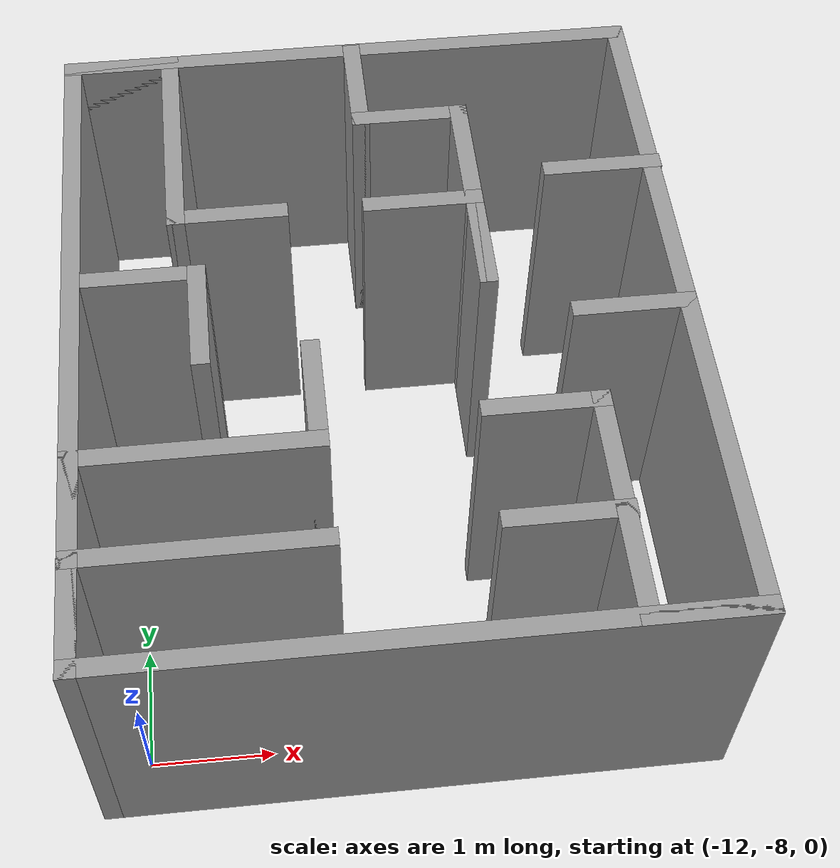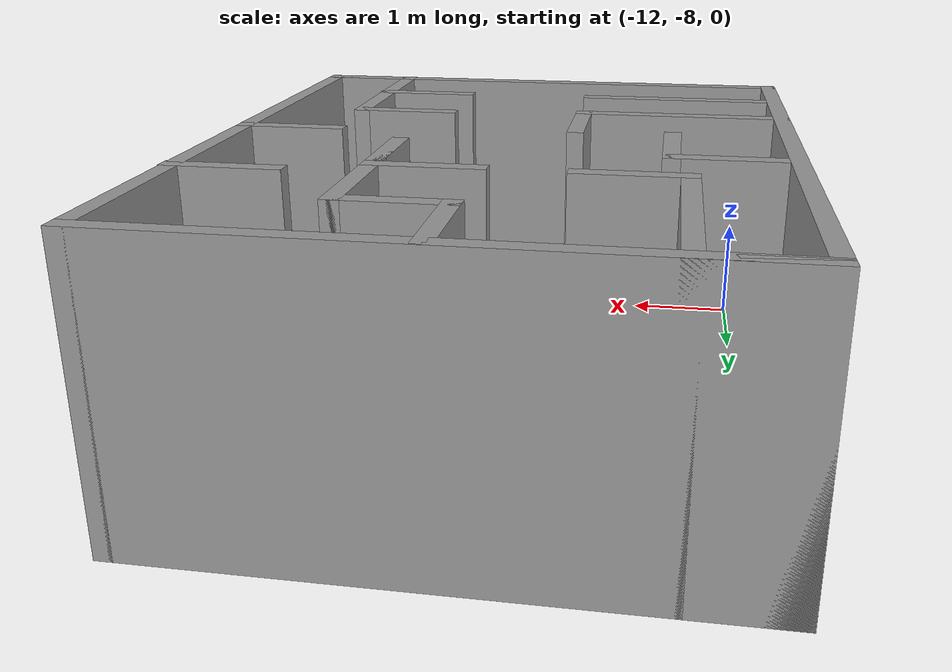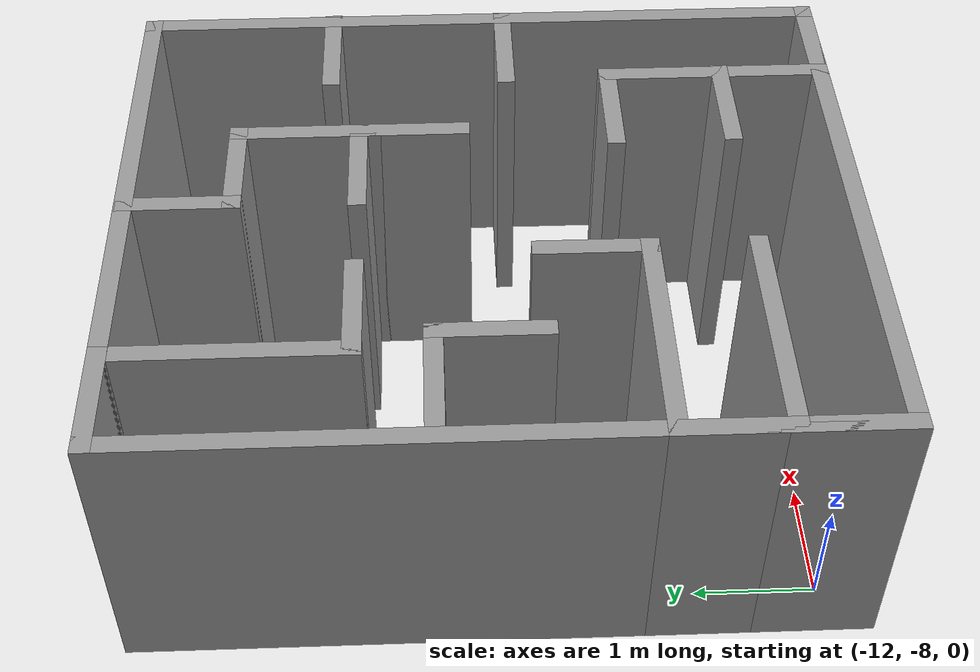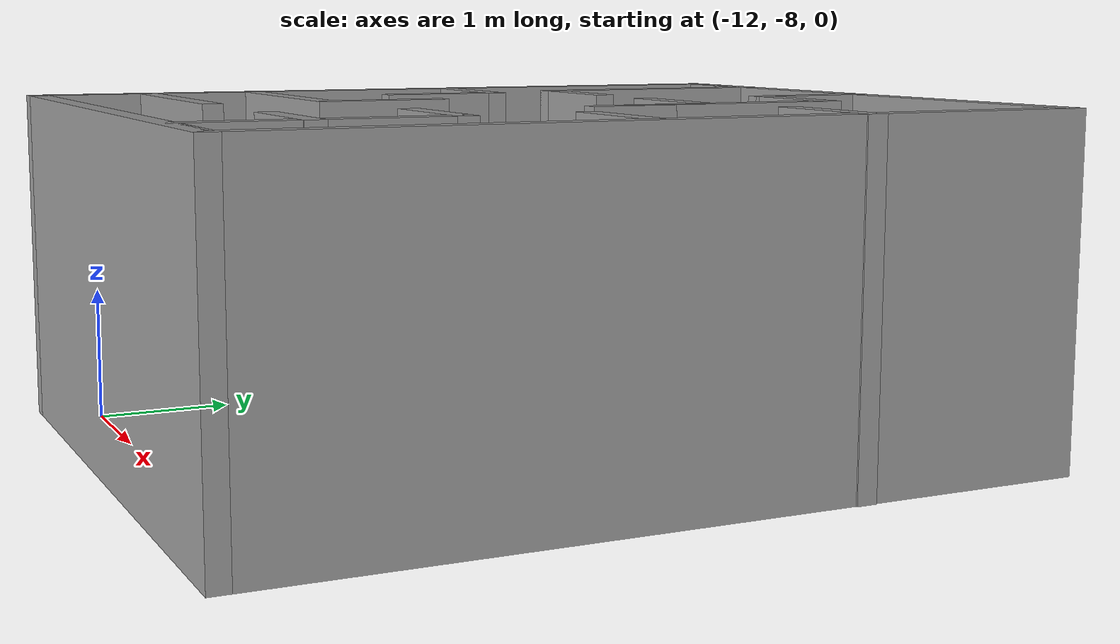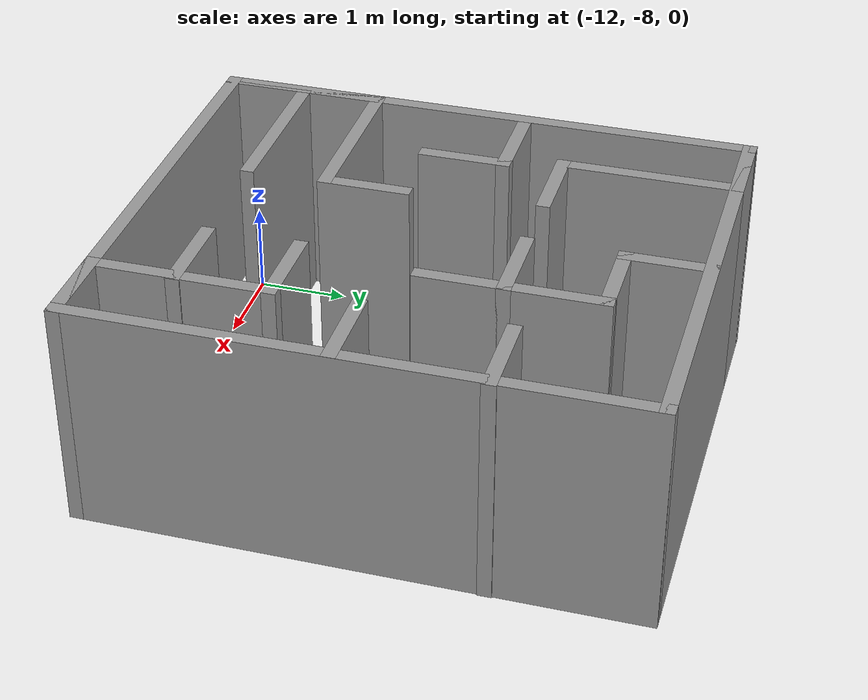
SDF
<?xml version='1.0'?>
<sdf version='1.6'>
  <model name='building2'>
    <pose frame=''>-9.87864 -5.415 0 0 -0 0</pose>
    <link name='Wall_0'>
      <collision name='Wall_0_Collision'>
        <geometry>
          <box>
            <size>5 0.15 2.5</size>
          </box>
        </geometry>
        <pose frame=''>0 0 1.25 0 -0 0</pose>
      </collision>
      <visual name='Wall_0_Visual'>
        <pose frame=''>0 0 1.25 0 -0 0</pose>
        <geometry>
          <box>
            <size>5 0.15 2.5</size>
          </box>
        </geometry>
        <material>
          <script>
            <uri>file://media/materials/scripts/gazebo.material</uri>
            <name>Gazebo/Grey</name>
          </script>
          <ambient>1 1 1 1</ambient>
        </material>
        <meta>
          <layer>0</layer>
        </meta>
      </visual>
      <pose frame=''>-0.006356 2.925 0 0 -0 0</pose>
    </link>
    <link name='Wall_1'>
      <collision name='Wall_1_Collision'>
        <geometry>
          <box>
            <size>6 0.15 2.5</size>
          </box>
        </geometry>
        <pose frame=''>0 0 1.25 0 -0 0</pose>
      </collision>
      <visual name='Wall_1_Visual'>
        <pose frame=''>0 0 1.25 0 -0 0</pose>
        <geometry>
          <box>
            <size>6 0.15 2.5</size>
          </box>
        </geometry>
        <material>
          <script>
            <uri>file://media/materials/scripts/gazebo.material</uri>
            <name>Gazebo/Grey</name>
          </script>
          <ambient>1 1 1 1</ambient>
        </material>
        <meta>
          <layer>0</layer>
        </meta>
      </visual>
      <pose frame=''>2.41864 0 0 0 0 -1.5708</pose>
    </link>
    <link name='Wall_10'>
      <collision name='Wall_10_Collision'>
        <geometry>
          <box>
            <size>2 0.15 2.5</size>
          </box>
        </geometry>
        <pose frame=''>0 0 1.25 0 -0 0</pose>
      </collision>
      <visual name='Wall_10_Visual'>
        <pose frame=''>0 0 1.25 0 -0 0</pose>
        <geometry>
          <box>
            <size>2 0.15 2.5</size>
          </box>
        </geometry>
        <material>
          <script>
            <uri>file://media/materials/scripts/gazebo.material</uri>
            <name>Gazebo/Grey</name>
          </script>
          <ambient>1 1 1 1</ambient>
        </material>
        <meta>
          <layer>0</layer>
        </meta>
      </visual>
      <pose frame=''>-1.50636 -2.075 0 0 -0 0</pose>
    </link>
    <link name='Wall_12'>
      <collision name='Wall_12_Collision'>
        <geometry>
          <box>
            <size>1 0.15 2.5</size>
          </box>
        </geometry>
        <pose frame=''>0 0 1.25 0 -0 0</pose>
      </collision>
      <visual name='Wall_12_Visual'>
        <pose frame=''>0 0 1.25 0 -0 0</pose>
        <geometry>
          <box>
            <size>1 0.15 2.5</size>
          </box>
        </geometry>
        <material>
          <script>
            <uri>file://media/materials/scripts/gazebo.material</uri>
            <name>Gazebo/Grey</name>
          </script>
          <ambient>1 1 1 1</ambient>
        </material>
        <meta>
          <layer>0</layer>
        </meta>
      </visual>
      <pose frame=''>-2.43136 -1.65 0 0 -0 1.5708</pose>
    </link>
    <link name='Wall_13'>
      <collision name='Wall_13_Collision'>
        <geometry>
          <box>
            <size>2 0.15 2.5</size>
          </box>
        </geometry>
        <pose frame=''>0 0 1.25 0 -0 0</pose>
      </collision>
      <visual name='Wall_13_Visual'>
        <pose frame=''>0 0 1.25 0 -0 0</pose>
        <geometry>
          <box>
            <size>2 0.15 2.5</size>
          </box>
        </geometry>
        <material>
          <script>
            <uri>file://media/materials/scripts/gazebo.material</uri>
            <name>Gazebo/Grey</name>
          </script>
          <ambient>1 1 1 1</ambient>
        </material>
        <meta>
          <layer>0</layer>
        </meta>
      </visual>
      <pose frame=''>-1.50636 -1.225 0 0 -0 0</pose>
    </link>
    <link name='Wall_14'>
      <collision name='Wall_14_Collision'>
        <geometry>
          <box>
            <size>1 0.15 2.5</size>
          </box>
        </geometry>
        <pose frame=''>0 0 1.25 0 -0 0</pose>
      </collision>
      <visual name='Wall_14_Visual'>
        <pose frame=''>0 0 1.25 0 -0 0</pose>
        <geometry>
          <box>
            <size>1 0.15 2.5</size>
          </box>
        </geometry>
        <material>
          <script>
            <uri>file://media/materials/scripts/gazebo.material</uri>
            <name>Gazebo/Grey</name>
          </script>
          <ambient>1 1 1 1</ambient>
        </material>
        <meta>
          <layer>0</layer>
        </meta>
      </visual>
      <pose frame=''>-0.581356 -0.8 0 0 -0 1.5708</pose>
    </link>
    <link name='Wall_2'>
      <collision name='Wall_2_Collision'>
        <geometry>
          <box>
            <size>5 0.15 2.5</size>
          </box>
        </geometry>
        <pose frame=''>0 0 1.25 0 -0 0</pose>
      </collision>
      <visual name='Wall_2_Visual'>
        <pose frame=''>0 0 1.25 0 -0 0</pose>
        <geometry>
          <box>
            <size>5 0.15 2.5</size>
          </box>
        </geometry>
        <material>
          <script>
            <uri>file://media/materials/scripts/gazebo.material</uri>
            <name>Gazebo/Grey</name>
          </script>
          <ambient>1 1 1 1</ambient>
        </material>
        <meta>
          <layer>0</layer>
        </meta>
      </visual>
      <pose frame=''>-0.006356 -2.925 0 0 -0 3.14159</pose>
    </link>
    <link name='Wall_20'>
      <collision name='Wall_20_Collision'>
        <geometry>
          <box>
            <size>1 0.15 2.5</size>
          </box>
        </geometry>
        <pose frame=''>0 0 1.25 0 -0 0</pose>
      </collision>
      <visual name='Wall_20_Visual'>
        <pose frame=''>0 0 1.25 0 -0 0</pose>
        <geometry>
          <box>
            <size>1 0.15 2.5</size>
          </box>
        </geometry>
        <material>
          <script>
            <uri>file://media/materials/scripts/gazebo.material</uri>
            <name>Gazebo/Grey</name>
          </script>
          <ambient>1 1 1 1</ambient>
        </material>
        <meta>
          <layer>0</layer>
        </meta>
      </visual>
      <pose frame=''>1.99364 -2.925 0 0 -0 3.14159</pose>
    </link>
    <link name='Wall_21'>
      <collision name='Wall_21_Collision'>
        <geometry>
          <box>
            <size>2 0.15 2.5</size>
          </box>
        </geometry>
        <pose frame=''>0 0 1.25 0 -0 0</pose>
      </collision>
      <visual name='Wall_21_Visual'>
        <pose frame=''>0 0 1.25 0 -0 0</pose>
        <geometry>
          <box>
            <size>2 0.15 2.5</size>
          </box>
        </geometry>
        <material>
          <script>
            <uri>file://media/materials/scripts/gazebo.material</uri>
            <name>Gazebo/Grey</name>
          </script>
          <ambient>1 1 1 1</ambient>
        </material>
        <meta>
          <layer>0</layer>
        </meta>
      </visual>
      <pose frame=''>1.56864 -2 0 0 -0 1.5708</pose>
    </link>
    <link name='Wall_22'>
      <collision name='Wall_22_Collision'>
        <geometry>
          <box>
            <size>1 0.15 2.5</size>
          </box>
        </geometry>
        <pose frame=''>0 0 1.25 0 -0 0</pose>
      </collision>
      <visual name='Wall_22_Visual'>
        <pose frame=''>0 0 1.25 0 -0 0</pose>
        <geometry>
          <box>
            <size>1 0.15 2.5</size>
          </box>
        </geometry>
        <material>
          <script>
            <uri>file://media/materials/scripts/gazebo.material</uri>
            <name>Gazebo/Grey</name>
          </script>
          <ambient>1 1 1 1</ambient>
        </material>
        <meta>
          <layer>0</layer>
        </meta>
      </visual>
      <pose frame=''>1.14365 -1.075 0 0 -0 3.14159</pose>
    </link>
    <link name='Wall_3'>
      <collision name='Wall_3_Collision'>
        <geometry>
          <box>
            <size>6 0.15 2.5</size>
          </box>
        </geometry>
        <pose frame=''>0 0 1.25 0 -0 0</pose>
      </collision>
      <visual name='Wall_3_Visual'>
        <pose frame=''>0 0 1.25 0 -0 0</pose>
        <geometry>
          <box>
            <size>6 0.15 2.5</size>
          </box>
        </geometry>
        <material>
          <script>
            <uri>file://media/materials/scripts/gazebo.material</uri>
            <name>Gazebo/Grey</name>
          </script>
          <ambient>1 1 1 1</ambient>
        </material>
        <meta>
          <layer>0</layer>
        </meta>
      </visual>
      <pose frame=''>-2.43136 0 0 0 -0 1.5708</pose>
    </link>
    <link name='Wall_33'>
      <collision name='Wall_33_Collision'>
        <geometry>
          <box>
            <size>1 0.15 2.5</size>
          </box>
        </geometry>
        <pose frame=''>0 0 1.25 0 -0 0</pose>
      </collision>
      <visual name='Wall_33_Visual'>
        <pose frame=''>0 0 1.25 0 -0 0</pose>
        <geometry>
          <box>
            <size>1 0.15 2.5</size>
          </box>
        </geometry>
        <material>
          <script>
            <uri>file://media/materials/scripts/gazebo.material</uri>
            <name>Gazebo/Grey</name>
          </script>
          <ambient>1 1 1 1</ambient>
        </material>
        <meta>
          <layer>0</layer>
        </meta>
      </visual>
      <pose frame=''>0.035979 2.48883 0 0 0 -1.5708</pose>
    </link>
    <link name='Wall_34'>
      <collision name='Wall_34_Collision'>
        <geometry>
          <box>
            <size>1 0.15 2.5</size>
          </box>
        </geometry>
        <pose frame=''>0 0 1.25 0 -0 0</pose>
      </collision>
      <visual name='Wall_34_Visual'>
        <pose frame=''>0 0 1.25 0 -0 0</pose>
        <geometry>
          <box>
            <size>1 0.15 2.5</size>
          </box>
        </geometry>
        <material>
          <script>
            <uri>file://media/materials/scripts/gazebo.material</uri>
            <name>Gazebo/Grey</name>
          </script>
          <ambient>1 1 1 1</ambient>
        </material>
        <meta>
          <layer>0</layer>
        </meta>
      </visual>
      <pose frame=''>0.460979 2.06383 0 0 -0 0</pose>
    </link>
    <link name='Wall_36'>
      <collision name='Wall_36_Collision'>
        <geometry>
          <box>
            <size>2 0.15 2.5</size>
          </box>
        </geometry>
        <pose frame=''>0 0 1.25 0 -0 0</pose>
      </collision>
      <visual name='Wall_36_Visual'>
        <pose frame=''>0 0 1.25 0 -0 0</pose>
        <geometry>
          <box>
            <size>2 0.15 2.5</size>
          </box>
        </geometry>
        <material>
          <script>
            <uri>file://media/materials/scripts/gazebo.material</uri>
            <name>Gazebo/Grey</name>
          </script>
          <ambient>1 1 1 1</ambient>
        </material>
        <meta>
          <layer>0</layer>
        </meta>
      </visual>
      <pose frame=''>0.885979 1.13883 0 0 0 -1.5708</pose>
    </link>
    <link name='Wall_39'>
      <collision name='Wall_39_Collision'>
        <geometry>
          <box>
            <size>1 0.15 2.5</size>
          </box>
        </geometry>
        <pose frame=''>0 0 1.25 0 -0 0</pose>
      </collision>
      <visual name='Wall_39_Visual'>
        <pose frame=''>0 0 1.25 0 -0 0</pose>
        <geometry>
          <box>
            <size>1 0.15 2.5</size>
          </box>
        </geometry>
        <material>
          <script>
            <uri>file://media/materials/scripts/gazebo.material</uri>
            <name>Gazebo/Grey</name>
          </script>
          <ambient>1 1 1 1</ambient>
        </material>
        <meta>
          <layer>0</layer>
        </meta>
      </visual>
      <pose frame=''>1.15467 -2.05182 0 0 -0 3.14159</pose>
    </link>
    <link name='Wall_41'>
      <collision name='Wall_41_Collision'>
        <geometry>
          <box>
            <size>1 0.15 2.5</size>
          </box>
        </geometry>
        <pose frame=''>0 0 1.25 0 -0 0</pose>
      </collision>
      <visual name='Wall_41_Visual'>
        <pose frame=''>0 0 1.25 0 -0 0</pose>
        <geometry>
          <box>
            <size>1 0.15 2.5</size>
          </box>
        </geometry>
        <material>
          <script>
            <uri>file://media/materials/scripts/gazebo.material</uri>
            <name>Gazebo/Grey</name>
          </script>
          <ambient>1 1 1 1</ambient>
        </material>
        <meta>
          <layer>0</layer>
        </meta>
      </visual>
      <pose frame=''>0.885979 0.638834 0 0 -0 1.5708</pose>
    </link>
    <link name='Wall_42'>
      <collision name='Wall_42_Collision'>
        <geometry>
          <box>
            <size>1 0.15 2.5</size>
          </box>
        </geometry>
        <pose frame=''>0 0 1.25 0 -0 0</pose>
      </collision>
      <visual name='Wall_42_Visual'>
        <pose frame=''>0 0 1.25 0 -0 0</pose>
        <geometry>
          <box>
            <size>1 0.15 2.5</size>
          </box>
        </geometry>
        <material>
          <script>
            <uri>file://media/materials/scripts/gazebo.material</uri>
            <name>Gazebo/Grey</name>
          </script>
          <ambient>1 1 1 1</ambient>
        </material>
        <meta>
          <layer>0</layer>
        </meta>
      </visual>
      <pose frame=''>0.460979 1.06383 0 0 -0 3.14159</pose>
    </link>
    <link name='Wall_45'>
      <collision name='Wall_45_Collision'>
        <geometry>
          <box>
            <size>1 0.15 2.5</size>
          </box>
        </geometry>
        <pose frame=''>0 0 1.25 0 -0 0</pose>
      </collision>
      <visual name='Wall_45_Visual'>
        <pose frame=''>0 0 1.25 0 -0 0</pose>
        <geometry>
          <box>
            <size>1 0.15 2.5</size>
          </box>
        </geometry>
        <material>
          <script>
            <uri>file://media/materials/scripts/gazebo.material</uri>
            <name>Gazebo/Grey</name>
          </script>
          <ambient>1 1 1 1</ambient>
        </material>
        <meta>
          <layer>0</layer>
        </meta>
      </visual>
      <pose frame=''>-1.43136 0.05 0 0 -0 1.5708</pose>
    </link>
    <link name='Wall_5'>
      <collision name='Wall_5_Collision'>
        <geometry>
          <box>
            <size>1 0.15 2.5</size>
          </box>
        </geometry>
        <pose frame=''>0 0 1.25 0 -0 0</pose>
      </collision>
      <visual name='Wall_5_Visual'>
        <pose frame=''>0 0 1.25 0 -0 0</pose>
        <geometry>
          <box>
            <size>1 0.15 2.5</size>
          </box>
        </geometry>
        <material>
          <script>
            <uri>file://media/materials/scripts/gazebo.material</uri>
            <name>Gazebo/Grey</name>
          </script>
          <ambient>1 1 1 1</ambient>
        </material>
        <meta>
          <layer>0</layer>
        </meta>
      </visual>
      <pose frame=''>-2.00636 2.925 0 0 -0 0</pose>
    </link>
    <link name='Wall_51'>
      <collision name='Wall_51_Collision'>
        <geometry>
          <box>
            <size>1 0.15 2.5</size>
          </box>
        </geometry>
        <pose frame=''>0 0 1.25 0 -0 0</pose>
      </collision>
      <visual name='Wall_51_Visual'>
        <pose frame=''>0 0 1.25 0 -0 0</pose>
        <geometry>
          <box>
            <size>1 0.15 2.5</size>
          </box>
        </geometry>
        <material>
          <script>
            <uri>file://media/materials/scripts/gazebo.material</uri>
            <name>Gazebo/Grey</name>
          </script>
          <ambient>1 1 1 1</ambient>
        </material>
        <meta>
          <layer>0</layer>
        </meta>
      </visual>
      <pose frame=''>-1.85635 0.475 0 0 -0 3.14159</pose>
    </link>
    <link name='Wall_53'>
      <collision name='Wall_53_Collision'>
        <geometry>
          <box>
            <size>1 0.15 2.5</size>
          </box>
        </geometry>
        <pose frame=''>0 0 1.25 0 -0 0</pose>
      </collision>
      <visual name='Wall_53_Visual'>
        <pose frame=''>0 0 1.25 0 -0 0</pose>
        <geometry>
          <box>
            <size>1 0.15 2.5</size>
          </box>
        </geometry>
        <material>
          <script>
            <uri>file://media/materials/scripts/gazebo.material</uri>
            <name>Gazebo/Grey</name>
          </script>
          <ambient>1 1 1 1</ambient>
        </material>
        <meta>
          <layer>0</layer>
        </meta>
      </visual>
      <pose frame=''>2.00636 1.31692 0 0 -0 3.14159</pose>
    </link>
    <link name='Wall_58'>
      <collision name='Wall_58_Collision'>
        <geometry>
          <box>
            <size>1 0.15 2.5</size>
          </box>
        </geometry>
        <pose frame=''>0 0 1.25 0 -0 0</pose>
      </collision>
      <visual name='Wall_58_Visual'>
        <pose frame=''>0 0 1.25 0 -0 0</pose>
        <geometry>
          <box>
            <size>1 0.15 2.5</size>
          </box>
        </geometry>
        <material>
          <script>
            <uri>file://media/materials/scripts/gazebo.material</uri>
            <name>Gazebo/Grey</name>
          </script>
          <ambient>1 1 1 1</ambient>
        </material>
        <meta>
          <layer>0</layer>
        </meta>
      </visual>
      <pose frame=''>1.99115 -0.196356 0 0 -0 3.14159</pose>
    </link>
    <link name='Wall_6'>
      <collision name='Wall_6_Collision'>
        <geometry>
          <box>
            <size>2 0.15 2.5</size>
          </box>
        </geometry>
        <pose frame=''>0 0 1.25 0 -0 0</pose>
      </collision>
      <visual name='Wall_6_Visual'>
        <pose frame=''>0 0 1.25 0 -0 0</pose>
        <geometry>
          <box>
            <size>2 0.15 2.5</size>
          </box>
        </geometry>
        <material>
          <script>
            <uri>file://media/materials/scripts/gazebo.material</uri>
            <name>Gazebo/Grey</name>
          </script>
          <ambient>1 1 1 1</ambient>
        </material>
        <meta>
          <layer>0</layer>
        </meta>
      </visual>
      <pose frame=''>-1.58136 2 0 0 0 -1.5708</pose>
    </link>
    <link name='Wall_7'>
      <collision name='Wall_7_Collision'>
        <geometry>
          <box>
            <size>1 0.15 2.5</size>
          </box>
        </geometry>
        <pose frame=''>0 0 1.25 0 -0 0</pose>
      </collision>
      <visual name='Wall_7_Visual'>
        <pose frame=''>0 0 1.25 0 -0 0</pose>
        <geometry>
          <box>
            <size>1 0.15 2.5</size>
          </box>
        </geometry>
        <material>
          <script>
            <uri>file://media/materials/scripts/gazebo.material</uri>
            <name>Gazebo/Grey</name>
          </script>
          <ambient>1 1 1 1</ambient>
        </material>
        <meta>
          <layer>0</layer>
        </meta>
      </visual>
      <pose frame=''>-1.15636 1.075 0 0 -0 0</pose>
    </link>
    <link name='Wall_9'>
      <collision name='Wall_9_Collision'>
        <geometry>
          <box>
            <size>1 0.15 2.5</size>
          </box>
        </geometry>
        <pose frame=''>0 0 1.25 0 -0 0</pose>
      </collision>
      <visual name='Wall_9_Visual'>
        <pose frame=''>0 0 1.25 0 -0 0</pose>
        <geometry>
          <box>
            <size>1 0.15 2.5</size>
          </box>
        </geometry>
        <material>
          <script>
            <uri>file://media/materials/scripts/gazebo.material</uri>
            <name>Gazebo/Grey</name>
          </script>
          <ambient>1 1 1 1</ambient>
        </material>
        <meta>
          <layer>0</layer>
        </meta>
      </visual>
      <pose frame=''>-2.43136 -2.5 0 0 -0 1.5708</pose>
    </link>
    <static>1</static>
  </model>
</sdf>
